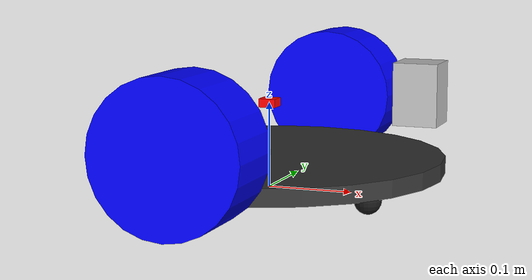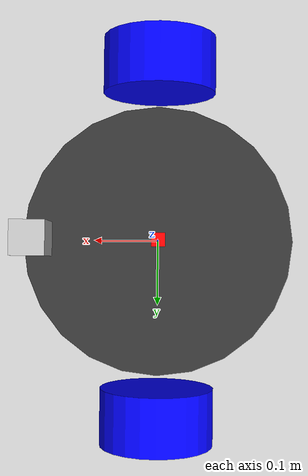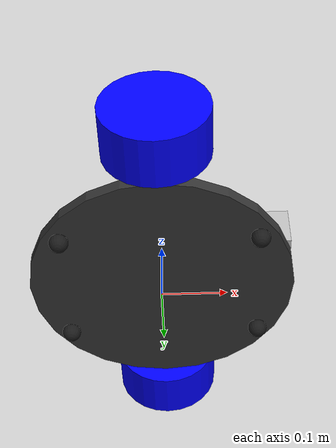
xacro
<?xml version="1.0"?>
<robot name="buyr" xmlns:xacro="http://www.ros.org/wiki/xacro">

  <xacro:property name="PI" value="3.1415926535897931"/>
  <xacro:property name="base_thick" value="0.02"/>
  <xacro:property name="wheel_radius" value="0.0825"/>
  <xacro:property name="wheel_width" value="0.082"/>
  <xacro:property name="ground_clearance" value="0.02"/>

  <material name="dark_gray"><color rgba="0.2 0.2 0.2 1"/></material>
  <material name="blue"><color rgba="0 0 1 1"/></material>
  <material name="black"><color rgba="0.1 0.1 0.1 1"/></material>
  <material name="red"><color rgba="1 0 0 1"/></material>
  <material name="silver"><color rgba="0.75 0.75 0.75 1"/></material>

  <link name="base_footprint"/>

  <joint name="base_joint" type="fixed">
    <parent link="base_footprint"/>
    <child link="base_link"/>
    <origin xyz="0 0 0.03" rpy="0 0 0"/>
  </joint>

  <link name="base_link">
    <visual>
      <geometry><cylinder radius="0.205" length="${base_thick}"/></geometry>
      <material name="dark_gray"/>
    </visual>
  </link>

  <xacro:macro name="wheel_assembly" params="prefix reflection">
    <link name="${prefix}_motor">
      <visual><geometry><box size="0.065 0.046 0.091"/></geometry><material name="black"/></visual>
    </link>
    <joint name="${prefix}_motor_joint" type="fixed">
      <parent link="base_link"/>
      <child link="${prefix}_motor"/>
      <origin xyz="0 ${reflection * 0.256} 0.0525" rpy="0 0 0"/>
    </joint>
    <link name="${prefix}_wheel">
      <visual>
        <origin xyz="0 0 0" rpy="${PI/2} 0 0"/>
        <geometry><cylinder radius="${wheel_radius}" length="${wheel_width}"/></geometry>
        <material name="blue"/>
      </visual>
    </link>
    <joint name="${prefix}_wheel_joint" type="continuous">
      <parent link="${prefix}_motor"/>
      <child link="${prefix}_wheel"/>
      <origin xyz="0 0 0" rpy="0 0 0"/><axis xyz="0 1 0"/>
    </joint>
  </xacro:macro>

  <xacro:wheel_assembly prefix="left" reflection="1"/>
  <xacro:wheel_assembly prefix="right" reflection="-1"/>

  <xacro:macro name="caster_wheel" params="prefix x_reflect y_reflect">
    <link name="${prefix}_caster_ball">
      <visual><geometry><sphere radius="0.015"/></geometry><material name="black"/></visual>
    </link>
    <joint name="${prefix}_caster_ball_joint" type="fixed">
      <parent link="base_link"/>
      <child link="${prefix}_caster_ball"/>
      <origin xyz="${x_reflect * 0.15} ${y_reflect * 0.10} -0.015" rpy="0 0 0"/>
    </joint>
  </xacro:macro>

  <xacro:caster_wheel prefix="front_left"  x_reflect="1"  y_reflect="1" />
  <xacro:caster_wheel prefix="front_right" x_reflect="1"  y_reflect="-1" />
  <xacro:caster_wheel prefix="rear_left"   x_reflect="-1" y_reflect="1" />
  <xacro:caster_wheel prefix="rear_right"  x_reflect="-1" y_reflect="-1" />

  <link name="imu_link">
    <visual>
      <geometry><box size="0.02 0.02 0.01"/></geometry>
      <material name="red"/>
    </visual>
  </link>
  <joint name="imu_joint" type="fixed">
    <parent link="base_link"/>
    <child link="imu_link"/>
    <origin xyz="0 0 0.07" rpy="0 0 0"/>
  </joint>

  <link name="laser"> <visual>
      <geometry><box size="0.05 0.05 0.07"/></geometry>
      <material name="silver"/>
    </visual>
  </link>

  <joint name="laser_joint" type="fixed">
    <parent link="base_link"/>
    <child link="laser"/> <origin xyz="0.18 0 0.09" rpy="0 0 0"/>
  </joint>

</robot>
